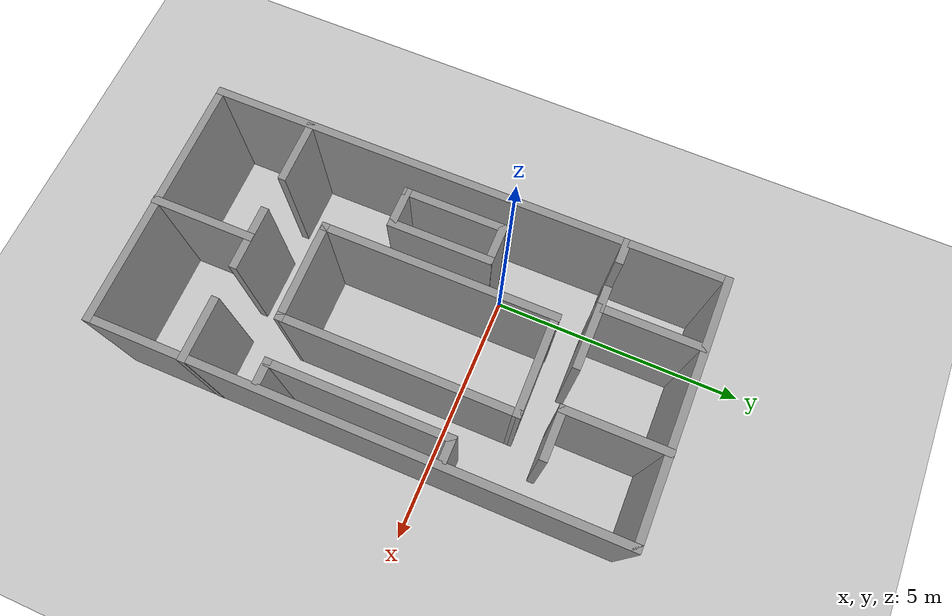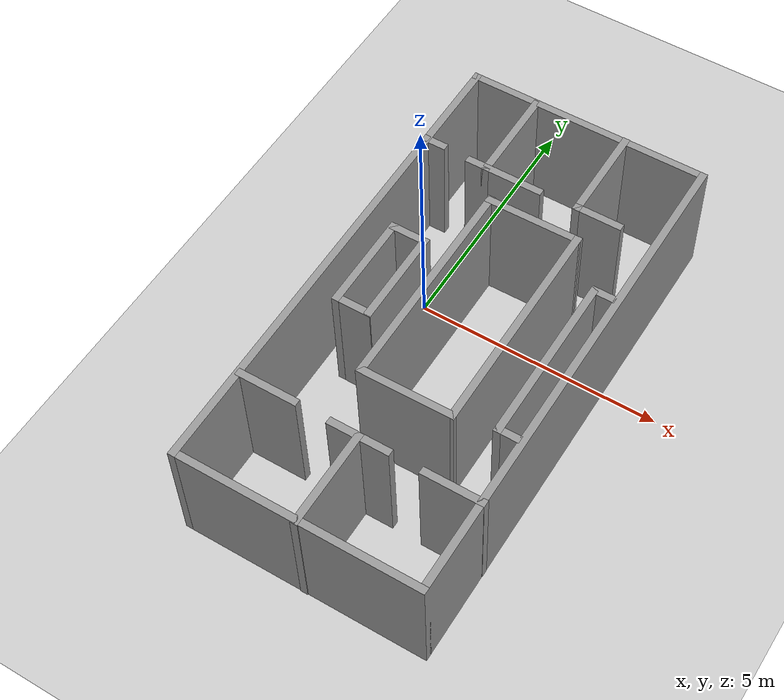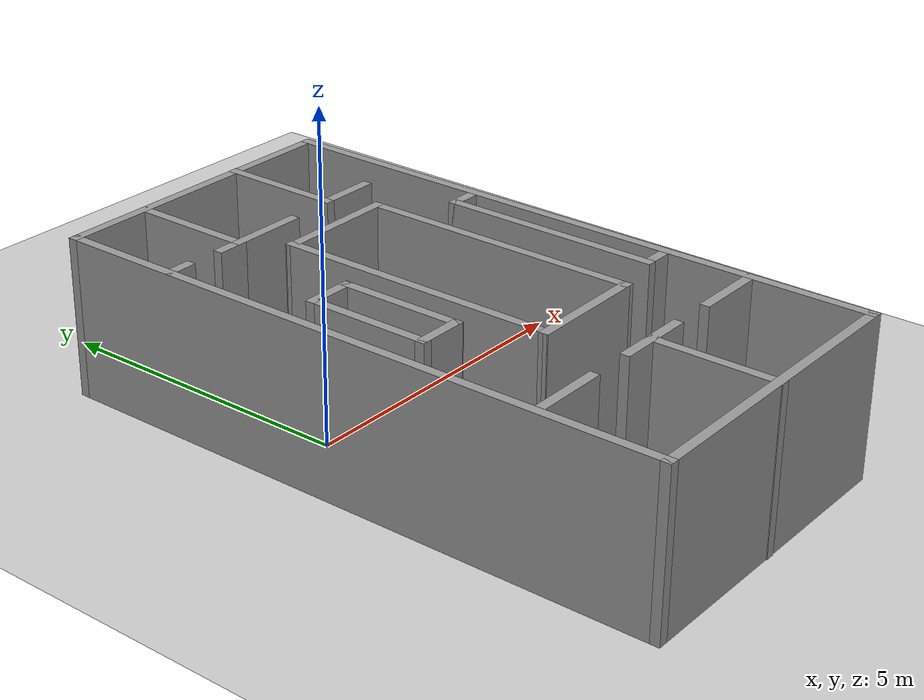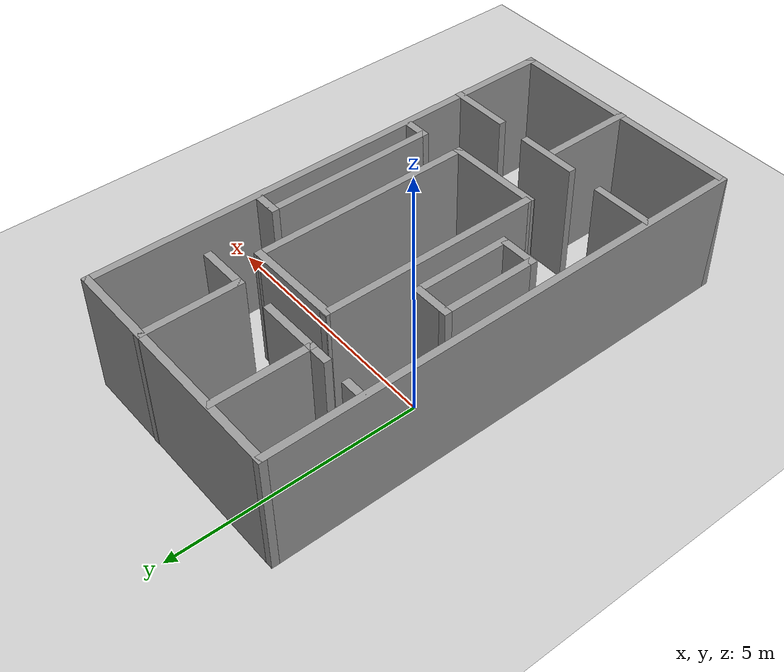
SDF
<sdf version="1.7">
 <world name="default">
  <model name="ground_plane">
   <static>1</static>
   <link name="link">
    <collision name="collision">
     <geometry><plane><normal>0 0 1</normal><size>100 100</size></plane></geometry>
     <surface><friction><ode><mu>100</mu><mu2>50</mu2></ode></friction></surface>
    </collision>
    <visual name="visual">
     <cast_shadows>0</cast_shadows>
     <geometry><plane><normal>0 0 1</normal><size>100 100</size></plane></geometry>
     <material>
      <script><uri>file://media/materials/scripts/gazebo.material</uri><name>Gazebo/Grey</name></script>
     </material>
    </visual>
   </link>
  </model>
  <light name="sun" type="directional">
   <pose>0 0 10 0 -0 0</pose>
   <diffuse>0.8 0.8 0.8 1</diffuse>
   <specular>0.2 0.2 0.2 1</specular>
   <attenuation>
    <range>1000</range>
    <constant>0.9</constant>
    <linear>0.01</linear>
    <quadratic>0.001</quadratic>
   </attenuation>
   <direction>-0.5 0.1 -0.9</direction>
   <spot><inner_angle>0</inner_angle><outer_angle>0</outer_angle><falloff>0</falloff></spot>
  </light>
  <scene><shadows>0</shadows><ambient>0.4 0.4 0.4 1</ambient><background>0.7 0.7 0.7 1</background></scene>
  <physics type="ode">
   <real_time_update_rate>1000</real_time_update_rate>
   <max_step_size>0.001</max_step_size>
   <real_time_factor>1</real_time_factor>
   <ode>
    <solver>
     <type>quick</type>
     <iters>150</iters>
     <precon_iters>0</precon_iters>
     <sor>1.4</sor>
     <use_dynamic_moi_rescaling>1</use_dynamic_moi_rescaling>
    </solver>
    <constraints>
     <cfm>1e-05</cfm>
     <erp>0.2</erp>
     <contact_max_correcting_vel>2000</contact_max_correcting_vel>
     <contact_surface_layer>0.01</contact_surface_layer>
    </constraints>
   </ode>
  </physics>
  <gravity>0 0 -9.8</gravity>
  <magnetic_field>6e-06 2.3e-05 -4.2e-05</magnetic_field>
  <atmosphere type="adiabatic"/>
  <spherical_coordinates>
   <surface_model>EARTH_WGS84</surface_model>
   <latitude_deg>0</latitude_deg>
   <longitude_deg>0</longitude_deg>
   <elevation>0</elevation>
   <heading_deg>0</heading_deg>
  </spherical_coordinates>
  <model name="turtlebot3_library_test">
   <pose>0.957903 -1.22231 0 0 -0 1.57537</pose>
   <link name="Wall_1">
    <collision name="Wall_1_Collision">
     <geometry><box><size>10 0.15 2.5</size></box></geometry>
     <pose>0 0 1.25 0 -0 0</pose>
    </collision>
    <visual name="Wall_1_Visual">
     <pose>0 0 1.25 0 -0 0</pose>
     <geometry><box><size>10 0.15 2.5</size></box></geometry>
     <material>
      <script><uri>file://media/materials/scripts/gazebo.material</uri><name>Gazebo/Grey</name></script>
      <ambient>1 1 1 1</ambient>
     </material>
     <meta><layer>0</layer></meta>
    </visual>
    <pose>0.002969 2.00079 0 0 -0 0</pose>
   </link>
   <link name="Wall_13">
    <collision name="Wall_13_Collision">
     <geometry><box><size>2 0.15 2.5</size></box></geometry>
     <pose>0 0 1.25 0 -0 0</pose>
    </collision>
    <visual name="Wall_13_Visual">
     <pose>0 0 1.25 0 -0 0</pose>
     <geometry><box><size>2 0.15 2.5</size></box></geometry>
     <material>
      <script><uri>file://media/materials/scripts/gazebo.material</uri><name>Gazebo/Grey</name></script>
      <ambient>1 1 1 1</ambient>
     </material>
     <meta><layer>0</layer></meta>
    </visual>
    <pose>0.050497 1.42284 0 0 -0 0</pose>
   </link>
   <link name="Wall_15">
    <collision name="Wall_15_Collision">
     <geometry><box><size>0.795626 0.15 2.5</size></box></geometry>
     <pose>0 0 1.25 0 -0 0</pose>
    </collision>
    <visual name="Wall_15_Visual">
     <pose>0 0 1.25 0 -0 0</pose>
     <geometry><box><size>0.795626 0.15 2.5</size></box></geometry>
     <material>
      <script><uri>file://media/materials/scripts/gazebo.material</uri><name>Gazebo/Grey</name></script>
      <ambient>1 1 1 1</ambient>
     </material>
     <meta><layer>0</layer></meta>
    </visual>
    <pose>-0.874503 1.10003 0 0 -0 -1.5708</pose>
   </link>
   <link name="Wall_16">
    <collision name="Wall_16_Collision">
     <geometry><box><size>2 0.15 2.5</size></box></geometry>
     <pose>0 0 1.25 0 -0 0</pose>
    </collision>
    <visual name="Wall_16_Visual">
     <pose>0 0 1.25 0 -0 0</pose>
     <geometry><box><size>2 0.15 2.5</size></box></geometry>
     <material>
      <script><uri>file://media/materials/scripts/gazebo.material</uri><name>Gazebo/Grey</name></script>
      <ambient>1 1 1 1</ambient>
     </material>
     <meta><layer>0</layer></meta>
    </visual>
    <pose>0.050497 0.762003 0 0 -0 0</pose>
   </link>
   <link name="Wall_17">
    <collision name="Wall_17_Collision">
     <geometry><box><size>0.795626 0.15 2.5</size></box></geometry>
     <pose>0 0 1.25 0 -0 0</pose>
    </collision>
    <visual name="Wall_17_Visual">
     <pose>0 0 1.25 0 -0 0</pose>
     <geometry><box><size>0.795626 0.15 2.5</size></box></geometry>
     <material>
      <script><uri>file://media/materials/scripts/gazebo.material</uri><name>Gazebo/Grey</name></script>
      <ambient>1 1 1 1</ambient>
     </material>
     <meta><layer>0</layer></meta>
    </visual>
    <pose>0.975497 1.10003 0 0 -0 1.5708</pose>
   </link>
   <link name="Wall_26">
    <collision name="Wall_26_Collision">
     <geometry><box><size>3.5 0.15 2.5</size></box></geometry>
     <pose>0 0 1.25 0 -0 0</pose>
    </collision>
    <visual name="Wall_26_Visual">
     <pose>0 0 1.25 0 -0 0</pose>
     <geometry><box><size>3.5 0.15 2.5</size></box></geometry>
     <material>
      <script><uri>file://media/materials/scripts/gazebo.material</uri><name>Gazebo/Grey</name></script>
      <ambient>1 1 1 1</ambient>
     </material>
     <meta><layer>0</layer></meta>
    </visual>
    <pose>-0.081611 -2.37935 0 0 -0 0</pose>
   </link>
   <link name="Wall_27">
    <collision name="Wall_27_Collision">
     <geometry><box><size>0.5 0.15 2.5</size></box></geometry>
     <pose>0 0 1.25 0 -0 0</pose>
    </collision>
    <visual name="Wall_27_Visual">
     <pose>0 0 1.25 0 -0 0</pose>
     <geometry><box><size>0.5 0.15 2.5</size></box></geometry>
     <material>
      <script><uri>file://media/materials/scripts/gazebo.material</uri><name>Gazebo/Grey</name></script>
      <ambient>1 1 1 1</ambient>
     </material>
     <meta><layer>0</layer></meta>
    </visual>
    <pose>1.59339 -2.55435 0 0 -0 -1.5708</pose>
   </link>
   <link name="Wall_29">
    <collision name="Wall_29_Collision">
     <geometry><box><size>0.5 0.15 2.5</size></box></geometry>
     <pose>0 0 1.25 0 -0 0</pose>
    </collision>
    <visual name="Wall_29_Visual">
     <pose>0 0 1.25 0 -0 0</pose>
     <geometry><box><size>0.5 0.15 2.5</size></box></geometry>
     <material>
      <script><uri>file://media/materials/scripts/gazebo.material</uri><name>Gazebo/Grey</name></script>
      <ambient>1 1 1 1</ambient>
     </material>
     <meta><layer>0</layer></meta>
    </visual>
    <pose>-1.75661 -2.55435 0 0 -0 -1.5708</pose>
   </link>
   <link name="Wall_31">
    <collision name="Wall_31_Collision">
     <geometry><box><size>1.96292 0.15 2.5</size></box></geometry>
     <pose>0 0 1.25 0 -0 0</pose>
    </collision>
    <visual name="Wall_31_Visual">
     <pose>0 0 1.25 0 -0 0</pose>
     <geometry><box><size>1.96292 0.15 2.5</size></box></geometry>
     <material>
      <script><uri>file://media/materials/scripts/gazebo.material</uri><name>Gazebo/Grey</name></script>
      <ambient>1 1 1 1</ambient>
     </material>
     <meta><layer>0</layer></meta>
    </visual>
    <pose>-1.93151 -0.669906 0 0 -0 -1.56241</pose>
   </link>
   <link name="Wall_32">
    <collision name="Wall_32_Collision">
     <geometry><box><size>4.5 0.15 2.5</size></box></geometry>
     <pose>0 0 1.25 0 -0 0</pose>
    </collision>
    <visual name="Wall_32_Visual">
     <pose>0 0 1.25 0 -0 0</pose>
     <geometry><box><size>4.5 0.15 2.5</size></box></geometry>
     <material>
      <script><uri>file://media/materials/scripts/gazebo.material</uri><name>Gazebo/Grey</name></script>
      <ambient>1 1 1 1</ambient>
     </material>
     <meta><layer>0</layer></meta>
    </visual>
    <pose>0.251093 -1.57637 0 0 -0 0</pose>
   </link>
   <link name="Wall_33">
    <collision name="Wall_33_Collision">
     <geometry><box><size>1.96292 0.15 2.5</size></box></geometry>
     <pose>0 0 1.25 0 -0 0</pose>
    </collision>
    <visual name="Wall_33_Visual">
     <pose>0 0 1.25 0 -0 0</pose>
     <geometry><box><size>1.96292 0.15 2.5</size></box></geometry>
     <material>
      <script><uri>file://media/materials/scripts/gazebo.material</uri><name>Gazebo/Grey</name></script>
      <ambient>1 1 1 1</ambient>
     </material>
     <meta><layer>0</layer></meta>
    </visual>
    <pose>2.41849 -0.669906 0 0 -0 1.57919</pose>
   </link>
   <link name="Wall_34">
    <collision name="Wall_34_Collision">
     <geometry><box><size>4.5 0.15 2.5</size></box></geometry>
     <pose>0 0 1.25 0 -0 0</pose>
    </collision>
    <visual name="Wall_34_Visual">
     <pose>0 0 1.25 0 -0 0</pose>
     <geometry><box><size>4.5 0.15 2.5</size></box></geometry>
     <material>
      <script><uri>file://media/materials/scripts/gazebo.material</uri><name>Gazebo/Grey</name></script>
      <ambient>1 1 1 1</ambient>
     </material>
     <meta><layer>0</layer></meta>
    </visual>
    <pose>0.251093 0.236556 0 0 -0 3.14159</pose>
   </link>
   <link name="Wall_36">
    <collision name="Wall_36_Collision">
     <geometry><box><size>1.25 0.15 2.5</size></box></geometry>
     <pose>0 0 1.25 0 -0 0</pose>
    </collision>
    <visual name="Wall_36_Visual">
     <pose>0 0 1.25 0 -0 0</pose>
     <geometry><box><size>1.25 0.15 2.5</size></box></geometry>
     <material>
      <script><uri>file://media/materials/scripts/gazebo.material</uri><name>Gazebo/Grey</name></script>
      <ambient>1 1 1 1</ambient>
     </material>
     <meta><layer>0</layer></meta>
    </visual>
    <pose>-3.06456 1.40514 0 0 -0 -1.5708</pose>
   </link>
   <link name="Wall_38">
    <collision name="Wall_38_Collision">
     <geometry><box><size>1.25 0.15 2.5</size></box></geometry>
     <pose>0 0 1.25 0 -0 0</pose>
    </collision>
    <visual name="Wall_38_Visual">
     <pose>0 0 1.25 0 -0 0</pose>
     <geometry><box><size>1.25 0.15 2.5</size></box></geometry>
     <material>
      <script><uri>file://media/materials/scripts/gazebo.material</uri><name>Gazebo/Grey</name></script>
      <ambient>1 1 1 1</ambient>
     </material>
     <meta><layer>0</layer></meta>
    </visual>
    <pose>-3.07977 -0.465532 0 0 -0 -1.5708</pose>
   </link>
   <link name="Wall_4">
    <collision name="Wall_4_Collision">
     <geometry><box><size>5 0.15 2.5</size></box></geometry>
     <pose>0 0 1.25 0 -0 0</pose>
    </collision>
    <visual name="Wall_4_Visual">
     <pose>0 0 1.25 0 -0 0</pose>
     <geometry><box><size>5 0.15 2.5</size></box></geometry>
     <material>
      <script><uri>file://media/materials/scripts/gazebo.material</uri><name>Gazebo/Grey</name></script>
      <ambient>1 1 1 1</ambient>
     </material>
     <meta><layer>0</layer></meta>
    </visual>
    <pose>-4.92203 -0.424209 0 0 -0 -1.5708</pose>
   </link>
   <link name="Wall_40">
    <collision name="Wall_40_Collision">
     <geometry><box><size>1.25 0.15 2.5</size></box></geometry>
     <pose>0 0 1.25 0 -0 0</pose>
    </collision>
    <visual name="Wall_40_Visual">
     <pose>0 0 1.25 0 -0 0</pose>
     <geometry><box><size>1.25 0.15 2.5</size></box></geometry>
     <material>
      <script><uri>file://media/materials/scripts/gazebo.material</uri><name>Gazebo/Grey</name></script>
      <ambient>1 1 1 1</ambient>
     </material>
     <meta><layer>0</layer></meta>
    </visual>
    <pose>-3.09498 -2.30579 0 0 -0 -1.5708</pose>
   </link>
   <link name="Wall_42">
    <collision name="Wall_42_Collision">
     <geometry><box><size>2 0.15 2.5</size></box></geometry>
     <pose>0 0 1.25 0 -0 0</pose>
    </collision>
    <visual name="Wall_42_Visual">
     <pose>0 0 1.25 0 -0 0</pose>
     <geometry><box><size>2 0.15 2.5</size></box></geometry>
     <material>
      <script><uri>file://media/materials/scripts/gazebo.material</uri><name>Gazebo/Grey</name></script>
      <ambient>1 1 1 1</ambient>
     </material>
     <meta><layer>0</layer></meta>
    </visual>
    <pose>-4.01024 -0.447838 0 0 -0 0</pose>
   </link>
   <link name="Wall_44">
    <collision name="Wall_44_Collision">
     <geometry><box><size>0.5 0.15 2.5</size></box></geometry>
     <pose>0 0 1.25 0 -0 0</pose>
    </collision>
    <visual name="Wall_44_Visual">
     <pose>0 0 1.25 0 -0 0</pose>
     <geometry><box><size>0.5 0.15 2.5</size></box></geometry>
     <material>
      <script><uri>file://media/materials/scripts/gazebo.material</uri><name>Gazebo/Grey</name></script>
      <ambient>1 1 1 1</ambient>
     </material>
     <meta><layer>0</layer></meta>
    </visual>
    <pose>3.07977 1.82577 0 0 -0 -1.5708</pose>
   </link>
   <link name="Wall_46">
    <collision name="Wall_46_Collision">
     <geometry><box><size>0.5 0.15 2.5</size></box></geometry>
     <pose>0 0 1.25 0 -0 0</pose>
    </collision>
    <visual name="Wall_46_Visual">
     <pose>0 0 1.25 0 -0 0</pose>
     <geometry><box><size>0.5 0.15 2.5</size></box></geometry>
     <material>
      <script><uri>file://media/materials/scripts/gazebo.material</uri><name>Gazebo/Grey</name></script>
      <ambient>1 1 1 1</ambient>
     </material>
     <meta><layer>0</layer></meta>
    </visual>
    <pose>3.04935 0.852411 0 0 -0 -1.5708</pose>
   </link>
   <link name="Wall_47">
    <collision name="Wall_47_Collision">
     <geometry><box><size>2 0.15 2.5</size></box></geometry>
     <pose>0 0 1.25 0 -0 0</pose>
    </collision>
    <visual name="Wall_47_Visual">
     <pose>0 0 1.25 0 -0 0</pose>
     <geometry><box><size>2 0.15 2.5</size></box></geometry>
     <material>
      <script><uri>file://media/materials/scripts/gazebo.material</uri><name>Gazebo/Grey</name></script>
      <ambient>1 1 1 1</ambient>
     </material>
     <meta><layer>0</layer></meta>
    </visual>
    <pose>3.97435 0.677411 0 0 -0 0</pose>
   </link>
   <link name="Wall_49">
    <collision name="Wall_49_Collision">
     <geometry><box><size>1.25 0.15 2.5</size></box></geometry>
     <pose>0 0 1.25 0 -0 0</pose>
    </collision>
    <visual name="Wall_49_Visual">
     <pose>0 0 1.25 0 -0 0</pose>
     <geometry><box><size>1.25 0.15 2.5</size></box></geometry>
     <material>
      <script><uri>file://media/materials/scripts/gazebo.material</uri><name>Gazebo/Grey</name></script>
      <ambient>1 1 1 1</ambient>
     </material>
     <meta><layer>0</layer></meta>
    </visual>
    <pose>3.04935 0.127411 0 0 -0 -1.5708</pose>
   </link>
   <link name="Wall_5">
    <collision name="Wall_5_Collision">
     <geometry><box><size>10 0.15 2.5</size></box></geometry>
     <pose>0 0 1.25 0 -0 0</pose>
    </collision>
    <visual name="Wall_5_Visual">
     <pose>0 0 1.25 0 -0 0</pose>
     <geometry><box><size>10 0.15 2.5</size></box></geometry>
     <material>
      <script><uri>file://media/materials/scripts/gazebo.material</uri><name>Gazebo/Grey</name></script>
      <ambient>1 1 1 1</ambient>
     </material>
     <meta><layer>0</layer></meta>
    </visual>
    <pose>0.002969 -2.84921 0 0 -0 0</pose>
   </link>
   <link name="Wall_51">
    <collision name="Wall_51_Collision">
     <geometry><box><size>2 0.15 2.5</size></box></geometry>
     <pose>0 0 1.25 0 -0 0</pose>
    </collision>
    <visual name="Wall_51_Visual">
     <pose>0 0 1.25 0 -0 0</pose>
     <geometry><box><size>2 0.15 2.5</size></box></geometry>
     <material>
      <script><uri>file://media/materials/scripts/gazebo.material</uri><name>Gazebo/Grey</name></script>
      <ambient>1 1 1 1</ambient>
     </material>
     <meta><layer>0</layer></meta>
    </visual>
    <pose>4.01024 -1.22348 0 0 -0 3.14159</pose>
   </link>
   <link name="Wall_52">
    <collision name="Wall_52_Collision">
     <geometry><box><size>1 0.15 2.5</size></box></geometry>
     <pose>0 0 1.25 0 -0 0</pose>
    </collision>
    <visual name="Wall_52_Visual">
     <pose>0 0 1.25 0 -0 0</pose>
     <geometry><box><size>1 0.15 2.5</size></box></geometry>
     <material>
      <script><uri>file://media/materials/scripts/gazebo.material</uri><name>Gazebo/Grey</name></script>
      <ambient>1 1 1 1</ambient>
     </material>
     <meta><layer>0</layer></meta>
    </visual>
    <pose>3.08524 -1.64848 0 0 -0 -1.5708</pose>
   </link>
   <link name="Wall_6">
    <collision name="Wall_6_Collision">
     <geometry><box><size>5 0.15 2.5</size></box></geometry>
     <pose>0 0 1.25 0 -0 0</pose>
    </collision>
    <visual name="Wall_6_Visual">
     <pose>0 0 1.25 0 -0 0</pose>
     <geometry><box><size>5 0.15 2.5</size></box></geometry>
     <material>
      <script><uri>file://media/materials/scripts/gazebo.material</uri><name>Gazebo/Grey</name></script>
      <ambient>1 1 1 1</ambient>
     </material>
     <meta><layer>0</layer></meta>
    </visual>
    <pose>4.92797 -0.424209 0 0 -0 1.5708</pose>
   </link>
   <static>1</static>
  </model>
 </world>
</sdf>
